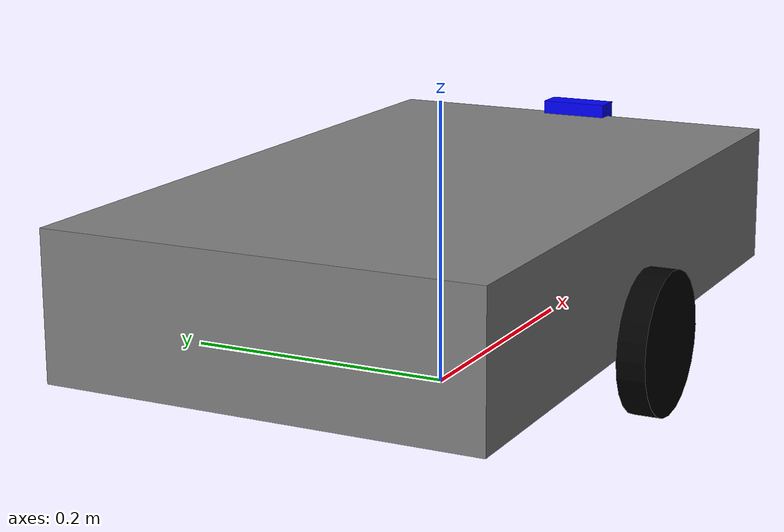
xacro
<?xml version="1.0"?>
<robot xmlns:xacro="http://www.ros.org/wiki/xacro" name="my_robot">

    <!-- 1. 定义全局参数（方便后续统一修改尺寸） -->
    <xacro:property name="chassis_length" value="0.5"/>
    <xacro:property name="chassis_width" value="0.3"/>
    <xacro:property name="chassis_height" value="0.1"/>
    <xacro:property name="wheel_radius" value="0.05"/>
    <xacro:property name="wheel_thickness" value="0.02"/>

    <!-- 2. 引入各个子模块 -->
    <xacro:include filename="$(find my_robot)/urdf/robot_core.xacro"/>
    <xacro:include filename="$(find my_robot)/urdf/camera.xacro"/>
    <!-- 暂时去掉激光雷达，便于排查底盘运动 -->
    <xacro:include filename="$(find my_robot)/urdf/plugins/gazebo_control.xacro"/>

</robot>

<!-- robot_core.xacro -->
<robot xmlns:xacro="http://www.ros.org/wiki/xacro">

    <!-- 1. 虚拟接地基准点 (TF树的根节点) -->
    <!-- base_link 抬到：底盘半高 + 轮半径，使底盘底面刚好在轮心高度之上 -->
    <link name="base_footprint"/>
    <joint name="base_joint" type="fixed">
        <parent link="base_footprint"/>
        <child link="base_link"/>
        <origin xyz="0 0 ${chassis_height / 2 + wheel_radius}" rpy="0 0 0"/>
    </joint>

    <!-- 2. 底盘 Link -->
    <link name="base_link">
        <visual>
            <geometry><box size="${chassis_length} ${chassis_width} ${chassis_height}"/></geometry>
            <material name="grey"><color rgba="0.5 0.5 0.5 1.0"/></material>
        </visual>
        <collision><geometry><box size="${chassis_length} ${chassis_width} ${chassis_height}"/></geometry></collision>
        <inertial>
            <!-- 只保留前万向轮时，质心略靠前，避免后仰压穿地面 -->
            <origin xyz="0.05 0 0" rpy="0 0 0"/>
            <mass value="5.0"/>
            <inertia ixx="0.01" ixy="0" ixz="0" iyy="0.01" iyz="0" izz="0.01"/>
        </inertial>
    </link>

    <!-- 3. 驱动轮宏 (左轮/右轮共用) -->
    <xacro:macro name="drive_wheel" params="prefix y_offset">
        <joint name="${prefix}_wheel_joint" type="continuous">
            <parent link="base_link"/>
            <child link="${prefix}_wheel_link"/>
            <!-- 轮心在底盘底面中心高度 → 相对地面高度 = wheel_radius -->
            <origin xyz="0 ${y_offset} ${-chassis_height / 2}" rpy="0 0 0"/>
            <axis xyz="0 1 0"/>
        </joint>
        <link name="${prefix}_wheel_link">
            <visual>
                <!-- 关键：把默认沿 Z 的圆柱转到沿 Y -->
                <origin xyz="0 0 0" rpy="1.5708 0 0"/>
                <geometry>
                    <cylinder radius="${wheel_radius}" length="${wheel_thickness}"/>
                </geometry>
                <material name="black">
                    <color rgba="0 0 0 1.0"/>
                </material>
            </visual>
            <collision>
                <origin xyz="0 0 0" rpy="1.5708 0 0"/>
                <geometry>
                    <cylinder radius="${wheel_radius}" length="${wheel_thickness}"/>
                </geometry>
            </collision>
            <inertial>
                <mass value="0.5"/>
                <inertia ixx="0.001" ixy="0" ixz="0" iyy="0.001" iyz="0" izz="0.001"/>
            </inertial>
        </link>
        <!-- 驱动轮需要足够摩擦才能推动底盘沿 x 前进 -->
        <gazebo reference="${prefix}_wheel_link">
            <mu1>1.0</mu1>
            <mu2>1.0</mu2>
            <kp>1000000.0</kp>
            <kd>100.0</kd>
        </gazebo>
    </xacro:macro>

    <!-- 4. 万向轮宏 (前后万向轮共用) -->
    <!-- 半径略小于驱动轮，主要由驱动轮承重，万向轮只做支撑 -->
    <xacro:property name="caster_radius" value="0.03"/>
    <xacro:macro name="caster_wheel" params="prefix x_offset">
        <joint name="${prefix}_caster_joint" type="fixed">
            <parent link="base_link"/>
            <child link="${prefix}_caster_link"/>
            <!-- 球心略高于贴地高度，避免穿模；主要由驱动轮承重 -->
            <origin xyz="${x_offset} 0 ${-(chassis_height / 2 + wheel_radius - caster_radius - 0.005)}" rpy="0 0 0"/>
        </joint>
        <link name="${prefix}_caster_link">
            <visual>
                <geometry><sphere radius="${caster_radius}"/></geometry>
                <material name="black"/>
            </visual>
            <collision><geometry><sphere radius="${caster_radius}"/></geometry></collision>
            <inertial>
                <mass value="0.1"/>
                <inertia ixx="0.0001" ixy="0" ixz="0" iyy="0.0001" iyz="0" izz="0.0001"/>
            </inertial>
        </link>
        <!-- 低摩擦，便于差速转向时滑动 -->
        <gazebo reference="${prefix}_caster_link">
            <mu1>0.0</mu1>
            <mu2>0.0</mu2>
            <minDepth>0.001</minDepth>
            <maxContacts>2</maxContacts>
        </gazebo>
    </xacro:macro>

    <!-- 5. 实例化轮子：只保留前万向轮，去掉后万向轮 -->
    <xacro:drive_wheel prefix="left" y_offset="${chassis_width / 2 + wheel_thickness / 2}"/>
    <xacro:drive_wheel prefix="right" y_offset="${-(chassis_width / 2 + wheel_thickness / 2)}"/>
    <xacro:caster_wheel prefix="front" x_offset="${chassis_length / 2 - 0.05}"/>

</robot>

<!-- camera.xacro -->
<robot xmlns:xacro="http://www.ros.org/wiki/xacro">

    <joint name="camera_joint" type="fixed">
        <parent link="base_link"/>
        <child link="camera_link"/>
        <origin xyz="${chassis_length / 2} 0 ${chassis_height / 2}" rpy="0 0 0"/>
    </joint>

    <link name="camera_link">
        <visual>
            <geometry><box size="0.02 0.05 0.02"/></geometry>
            <material name="blue"><color rgba="0 0 1 1.0"/></material>
        </visual>
        <collision><geometry><box size="0.02 0.05 0.02"/></geometry></collision>
        <inertial>
            <mass value="0.1"/>
            <inertia ixx="0.0001" ixy="0" ixz="0" iyy="0.0001" iyz="0" izz="0.0001"/>
        </inertial>
    </link>

    <!-- Gazebo 相机插件 -->
    <gazebo reference="camera_link">
        <material>Gazebo/Blue</material>
        <sensor name="camera_sensor" type="camera">
            <pose>0 0 0 0 0 0</pose>
            <visualize>true</visualize>
            <update_rate>30.0</update_rate>
            <camera name="head">
                <horizontal_fov>1.047</horizontal_fov>
                <image>
                    <width>640</width>
                    <height>480</height>
                    <format>R8G8B8</format>
                </image>
                <clip>
                    <near>0.1</near>
                    <far>100</far>
                </clip>
            </camera>
            <!-- 桥接到 ROS 2 -->
            <plugin name="camera_controller" filename="libgazebo_ros_camera.so">
                <ros>
                    <remapping>~/image_raw:=/camera/image_raw</remapping>
                    <remapping>~/camera_info:=/camera/camera_info</remapping>
                </ros>
                <camera_name>camera</camera_name>
                <frame_name>camera_link</frame_name>
            </plugin>
        </sensor>
    </gazebo>

</robot>
